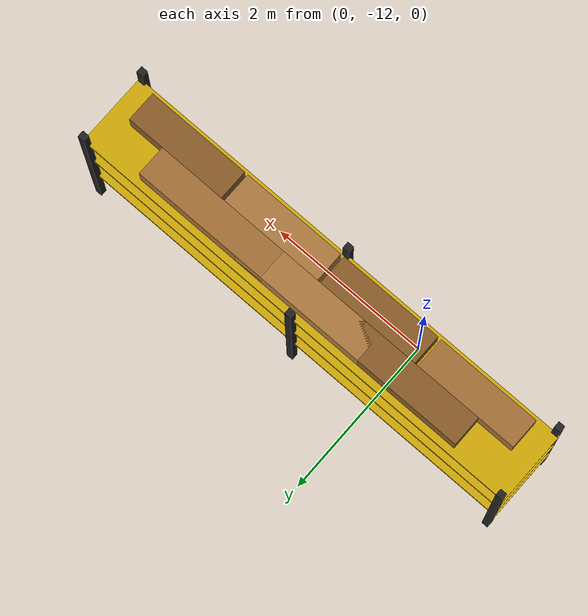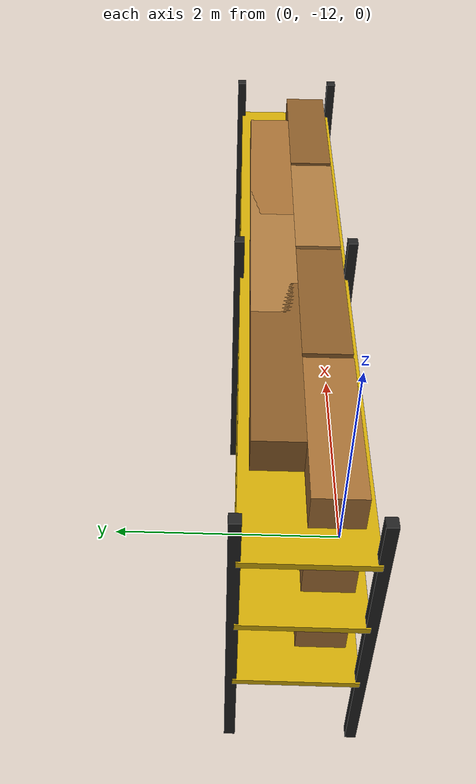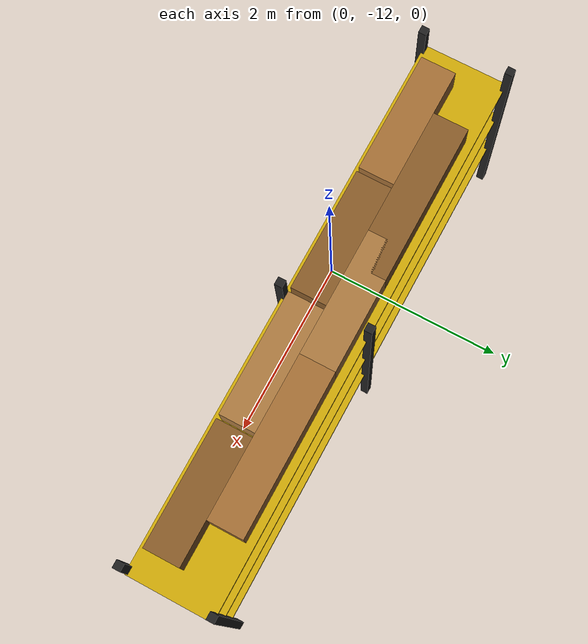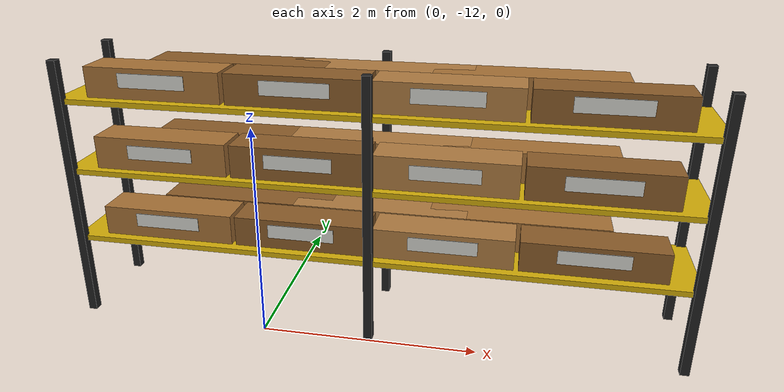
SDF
<sdf version="1.6">
 <world name="aws_industrial_warehouse">
  <model name="shelf_S4">
   <static>true</static>
   <pose>1 -11.5 0 0 0 0</pose>
   <link name="pFL">
    <pose>-2.8 -0.45 1.25 0 0 0</pose>
    <collision name="c">
     <geometry><box><size>0.08 0.08 2.5</size></box></geometry>
     <surface><friction><ode><mu>1.0</mu><mu2>1.0</mu2></ode></friction></surface>
    </collision>
    <visual name="v">
     <geometry><box><size>0.08 0.08 2.5</size></box></geometry>
     <material><ambient>0.10 0.10 0.10 1</ambient><diffuse>0.13 0.13 0.13 1</diffuse></material>
    </visual>
   </link>
   <link name="pBL">
    <pose>-2.8 0.45 1.25 0 0 0</pose>
    <collision name="c">
     <geometry><box><size>0.08 0.08 2.5</size></box></geometry>
     <surface><friction><ode><mu>1.0</mu><mu2>1.0</mu2></ode></friction></surface>
    </collision>
    <visual name="v">
     <geometry><box><size>0.08 0.08 2.5</size></box></geometry>
     <material><ambient>0.10 0.10 0.10 1</ambient><diffuse>0.13 0.13 0.13 1</diffuse></material>
    </visual>
   </link>
   <link name="pFC">
    <pose>0.0 -0.45 1.25 0 0 0</pose>
    <collision name="c">
     <geometry><box><size>0.08 0.08 2.5</size></box></geometry>
     <surface><friction><ode><mu>1.0</mu><mu2>1.0</mu2></ode></friction></surface>
    </collision>
    <visual name="v">
     <geometry><box><size>0.08 0.08 2.5</size></box></geometry>
     <material><ambient>0.10 0.10 0.10 1</ambient><diffuse>0.13 0.13 0.13 1</diffuse></material>
    </visual>
   </link>
   <link name="pBC">
    <pose>0.0 0.45 1.25 0 0 0</pose>
    <collision name="c">
     <geometry><box><size>0.08 0.08 2.5</size></box></geometry>
     <surface><friction><ode><mu>1.0</mu><mu2>1.0</mu2></ode></friction></surface>
    </collision>
    <visual name="v">
     <geometry><box><size>0.08 0.08 2.5</size></box></geometry>
     <material><ambient>0.10 0.10 0.10 1</ambient><diffuse>0.13 0.13 0.13 1</diffuse></material>
    </visual>
   </link>
   <link name="pFR">
    <pose>2.8 -0.45 1.25 0 0 0</pose>
    <collision name="c">
     <geometry><box><size>0.08 0.08 2.5</size></box></geometry>
     <surface><friction><ode><mu>1.0</mu><mu2>1.0</mu2></ode></friction></surface>
    </collision>
    <visual name="v">
     <geometry><box><size>0.08 0.08 2.5</size></box></geometry>
     <material><ambient>0.10 0.10 0.10 1</ambient><diffuse>0.13 0.13 0.13 1</diffuse></material>
    </visual>
   </link>
   <link name="pBR">
    <pose>2.8 0.45 1.25 0 0 0</pose>
    <collision name="c">
     <geometry><box><size>0.08 0.08 2.5</size></box></geometry>
     <surface><friction><ode><mu>1.0</mu><mu2>1.0</mu2></ode></friction></surface>
    </collision>
    <visual name="v">
     <geometry><box><size>0.08 0.08 2.5</size></box></geometry>
     <material><ambient>0.10 0.10 0.10 1</ambient><diffuse>0.13 0.13 0.13 1</diffuse></material>
    </visual>
   </link>
   <link name="deck1">
    <pose>0 0 0.77 0 0 0</pose>
    <collision name="c">
     <geometry><box><size>5.7 0.88 0.05</size></box></geometry>
     <surface><friction><ode><mu>1.0</mu><mu2>1.0</mu2></ode></friction></surface>
    </collision>
    <visual name="v">
     <geometry><box><size>5.7 0.88 0.05</size></box></geometry>
     <material><ambient>0.70 0.55 0.02 1</ambient><diffuse>0.82 0.67 0.03 1</diffuse></material>
    </visual>
   </link>
   <link name="deck2">
    <pose>0 0 1.45 0 0 0</pose>
    <collision name="c">
     <geometry><box><size>5.7 0.88 0.05</size></box></geometry>
     <surface><friction><ode><mu>1.0</mu><mu2>1.0</mu2></ode></friction></surface>
    </collision>
    <visual name="v">
     <geometry><box><size>5.7 0.88 0.05</size></box></geometry>
     <material><ambient>0.70 0.55 0.02 1</ambient><diffuse>0.82 0.67 0.03 1</diffuse></material>
    </visual>
   </link>
   <link name="deck3">
    <pose>0 0 2.12 0 0 0</pose>
    <collision name="c">
     <geometry><box><size>5.7 0.88 0.05</size></box></geometry>
     <surface><friction><ode><mu>1.0</mu><mu2>1.0</mu2></ode></friction></surface>
    </collision>
    <visual name="v">
     <geometry><box><size>5.7 0.88 0.05</size></box></geometry>
     <material><ambient>0.70 0.55 0.02 1</ambient><diffuse>0.82 0.67 0.03 1</diffuse></material>
    </visual>
   </link>
   <link name="bF1_1">
    <pose>-1.95 -0.18 0.94 0 0 0</pose>
    <visual name="v">
     <geometry><box><size>1.26 0.36 0.28</size></box></geometry>
     <material><ambient>0.58 0.38 0.18 1</ambient><diffuse>0.65 0.44 0.21 1</diffuse></material>
    </visual>
   </link>
   <link name="lF1_1">
    <pose>-1.95 -0.363 0.97 0 0 0</pose>
    <visual name="v">
     <geometry><box><size>0.62 0.005 0.13</size></box></geometry>
     <material><ambient>0.76 0.76 0.74 1</ambient><diffuse>0.83 0.83 0.81 1</diffuse></material>
    </visual>
   </link>
   <link name="bF1_2">
    <pose>-0.65 -0.18 0.94 0 0 0</pose>
    <visual name="v">
     <geometry><box><size>1.26 0.36 0.28</size></box></geometry>
     <material><ambient>0.48 0.30 0.12 1</ambient><diffuse>0.54 0.36 0.16 1</diffuse></material>
    </visual>
   </link>
   <link name="lF1_2">
    <pose>-0.65 -0.363 0.97 0 0 0</pose>
    <visual name="v">
     <geometry><box><size>0.62 0.005 0.13</size></box></geometry>
     <material><ambient>0.76 0.76 0.74 1</ambient><diffuse>0.83 0.83 0.81 1</diffuse></material>
    </visual>
   </link>
   <link name="bF1_3">
    <pose>0.65 -0.18 0.94 0 0 0</pose>
    <visual name="v">
     <geometry><box><size>1.26 0.36 0.28</size></box></geometry>
     <material><ambient>0.62 0.43 0.22 1</ambient><diffuse>0.68 0.48 0.25 1</diffuse></material>
    </visual>
   </link>
   <link name="lF1_3">
    <pose>0.65 -0.363 0.97 0 0 0</pose>
    <visual name="v">
     <geometry><box><size>0.62 0.005 0.13</size></box></geometry>
     <material><ambient>0.76 0.76 0.74 1</ambient><diffuse>0.83 0.83 0.81 1</diffuse></material>
    </visual>
   </link>
   <link name="bF1_4">
    <pose>1.95 -0.18 0.94 0 0 0</pose>
    <visual name="v">
     <geometry><box><size>1.26 0.36 0.28</size></box></geometry>
     <material><ambient>0.48 0.30 0.12 1</ambient><diffuse>0.54 0.36 0.16 1</diffuse></material>
    </visual>
   </link>
   <link name="lF1_4">
    <pose>1.95 -0.363 0.97 0 0 0</pose>
    <visual name="v">
     <geometry><box><size>0.62 0.005 0.13</size></box></geometry>
     <material><ambient>0.76 0.76 0.74 1</ambient><diffuse>0.83 0.83 0.81 1</diffuse></material>
    </visual>
   </link>
   <link name="bB1_1">
    <pose>-1.3 0.18 0.94 0 0 0</pose>
    <visual name="v">
     <geometry><box><size>1.65 0.36 0.3</size></box></geometry>
     <material><ambient>0.48 0.30 0.12 1</ambient><diffuse>0.54 0.36 0.16 1</diffuse></material>
    </visual>
   </link>
   <link name="bB1_2">
    <pose>0.0 0.18 0.94 0 0 0</pose>
    <visual name="v">
     <geometry><box><size>1.65 0.36 0.3</size></box></geometry>
     <material><ambient>0.62 0.43 0.22 1</ambient><diffuse>0.68 0.48 0.25 1</diffuse></material>
    </visual>
   </link>
   <link name="bB1_3">
    <pose>1.3 0.18 0.94 0 0 0</pose>
    <visual name="v">
     <geometry><box><size>1.65 0.36 0.3</size></box></geometry>
     <material><ambient>0.58 0.38 0.18 1</ambient><diffuse>0.65 0.44 0.21 1</diffuse></material>
    </visual>
   </link>
   <link name="bF2_1">
    <pose>-1.95 -0.18 1.62 0 0 0</pose>
    <visual name="v">
     <geometry><box><size>1.26 0.36 0.32</size></box></geometry>
     <material><ambient>0.58 0.38 0.18 1</ambient><diffuse>0.65 0.44 0.21 1</diffuse></material>
    </visual>
   </link>
   <link name="lF2_1">
    <pose>-1.95 -0.363 1.6500000000000001 0 0 0</pose>
    <visual name="v">
     <geometry><box><size>0.62 0.005 0.13</size></box></geometry>
     <material><ambient>0.76 0.76 0.74 1</ambient><diffuse>0.83 0.83 0.81 1</diffuse></material>
    </visual>
   </link>
   <link name="bF2_2">
    <pose>-0.65 -0.18 1.62 0 0 0</pose>
    <visual name="v">
     <geometry><box><size>1.26 0.36 0.32</size></box></geometry>
     <material><ambient>0.48 0.30 0.12 1</ambient><diffuse>0.54 0.36 0.16 1</diffuse></material>
    </visual>
   </link>
   <link name="lF2_2">
    <pose>-0.65 -0.363 1.6500000000000001 0 0 0</pose>
    <visual name="v">
     <geometry><box><size>0.62 0.005 0.13</size></box></geometry>
     <material><ambient>0.76 0.76 0.74 1</ambient><diffuse>0.83 0.83 0.81 1</diffuse></material>
    </visual>
   </link>
   <link name="bF2_3">
    <pose>0.65 -0.18 1.62 0 0 0</pose>
    <visual name="v">
     <geometry><box><size>1.26 0.36 0.32</size></box></geometry>
     <material><ambient>0.62 0.43 0.22 1</ambient><diffuse>0.68 0.48 0.25 1</diffuse></material>
    </visual>
   </link>
   <link name="lF2_3">
    <pose>0.65 -0.363 1.6500000000000001 0 0 0</pose>
    <visual name="v">
     <geometry><box><size>0.62 0.005 0.13</size></box></geometry>
     <material><ambient>0.76 0.76 0.74 1</ambient><diffuse>0.83 0.83 0.81 1</diffuse></material>
    </visual>
   </link>
   <link name="bF2_4">
    <pose>1.95 -0.18 1.62 0 0 0</pose>
    <visual name="v">
     <geometry><box><size>1.26 0.36 0.32</size></box></geometry>
     <material><ambient>0.48 0.30 0.12 1</ambient><diffuse>0.54 0.36 0.16 1</diffuse></material>
    </visual>
   </link>
   <link name="lF2_4">
    <pose>1.95 -0.363 1.6500000000000001 0 0 0</pose>
    <visual name="v">
     <geometry><box><size>0.62 0.005 0.13</size></box></geometry>
     <material><ambient>0.76 0.76 0.74 1</ambient><diffuse>0.83 0.83 0.81 1</diffuse></material>
    </visual>
   </link>
   <link name="bB2_1">
    <pose>-1.3 0.18 1.62 0 0 0</pose>
    <visual name="v">
     <geometry><box><size>1.65 0.36 0.28</size></box></geometry>
     <material><ambient>0.48 0.30 0.12 1</ambient><diffuse>0.54 0.36 0.16 1</diffuse></material>
    </visual>
   </link>
   <link name="bB2_2">
    <pose>0.0 0.18 1.62 0 0 0</pose>
    <visual name="v">
     <geometry><box><size>1.65 0.36 0.28</size></box></geometry>
     <material><ambient>0.62 0.43 0.22 1</ambient><diffuse>0.68 0.48 0.25 1</diffuse></material>
    </visual>
   </link>
   <link name="bB2_3">
    <pose>1.3 0.18 1.62 0 0 0</pose>
    <visual name="v">
     <geometry><box><size>1.65 0.36 0.28</size></box></geometry>
     <material><ambient>0.58 0.38 0.18 1</ambient><diffuse>0.65 0.44 0.21 1</diffuse></material>
    </visual>
   </link>
   <link name="bF3_1">
    <pose>-1.95 -0.18 2.29 0 0 0</pose>
    <visual name="v">
     <geometry><box><size>1.26 0.36 0.28</size></box></geometry>
     <material><ambient>0.58 0.38 0.18 1</ambient><diffuse>0.65 0.44 0.21 1</diffuse></material>
    </visual>
   </link>
   <link name="lF3_1">
    <pose>-1.95 -0.363 2.32 0 0 0</pose>
    <visual name="v">
     <geometry><box><size>0.62 0.005 0.13</size></box></geometry>
     <material><ambient>0.76 0.76 0.74 1</ambient><diffuse>0.83 0.83 0.81 1</diffuse></material>
    </visual>
   </link>
   <link name="bF3_2">
    <pose>-0.65 -0.18 2.29 0 0 0</pose>
    <visual name="v">
     <geometry><box><size>1.26 0.36 0.28</size></box></geometry>
     <material><ambient>0.48 0.30 0.12 1</ambient><diffuse>0.54 0.36 0.16 1</diffuse></material>
    </visual>
   </link>
   <link name="lF3_2">
    <pose>-0.65 -0.363 2.32 0 0 0</pose>
    <visual name="v">
     <geometry><box><size>0.62 0.005 0.13</size></box></geometry>
     <material><ambient>0.76 0.76 0.74 1</ambient><diffuse>0.83 0.83 0.81 1</diffuse></material>
    </visual>
   </link>
   <link name="bF3_3">
    <pose>0.65 -0.18 2.29 0 0 0</pose>
    <visual name="v">
     <geometry><box><size>1.26 0.36 0.28</size></box></geometry>
     <material><ambient>0.62 0.43 0.22 1</ambient><diffuse>0.68 0.48 0.25 1</diffuse></material>
    </visual>
   </link>
   <link name="lF3_3">
    <pose>0.65 -0.363 2.32 0 0 0</pose>
    <visual name="v">
     <geometry><box><size>0.62 0.005 0.13</size></box></geometry>
     <material><ambient>0.76 0.76 0.74 1</ambient><diffuse>0.83 0.83 0.81 1</diffuse></material>
    </visual>
   </link>
   <link name="bF3_4">
    <pose>1.95 -0.18 2.29 0 0 0</pose>
    <visual name="v">
     <geometry><box><size>1.26 0.36 0.28</size></box></geometry>
     <material><ambient>0.48 0.30 0.12 1</ambient><diffuse>0.54 0.36 0.16 1</diffuse></material>
    </visual>
   </link>
   <link name="lF3_4">
    <pose>1.95 -0.363 2.32 0 0 0</pose>
    <visual name="v">
     <geometry><box><size>0.62 0.005 0.13</size></box></geometry>
     <material><ambient>0.76 0.76 0.74 1</ambient><diffuse>0.83 0.83 0.81 1</diffuse></material>
    </visual>
   </link>
   <link name="bB3_1">
    <pose>-1.3 0.18 2.29 0 0 0</pose>
    <visual name="v">
     <geometry><box><size>1.65 0.36 0.28</size></box></geometry>
     <material><ambient>0.48 0.30 0.12 1</ambient><diffuse>0.54 0.36 0.16 1</diffuse></material>
    </visual>
   </link>
   <link name="bB3_2">
    <pose>0.0 0.18 2.29 0 0 0</pose>
    <visual name="v">
     <geometry><box><size>1.65 0.36 0.28</size></box></geometry>
     <material><ambient>0.62 0.43 0.22 1</ambient><diffuse>0.68 0.48 0.25 1</diffuse></material>
    </visual>
   </link>
   <link name="bB3_3">
    <pose>1.3 0.18 2.29 0 0 0</pose>
    <visual name="v">
     <geometry><box><size>1.65 0.36 0.28</size></box></geometry>
     <material><ambient>0.58 0.38 0.18 1</ambient><diffuse>0.65 0.44 0.21 1</diffuse></material>
    </visual>
   </link>
  </model>
 </world>
</sdf>
